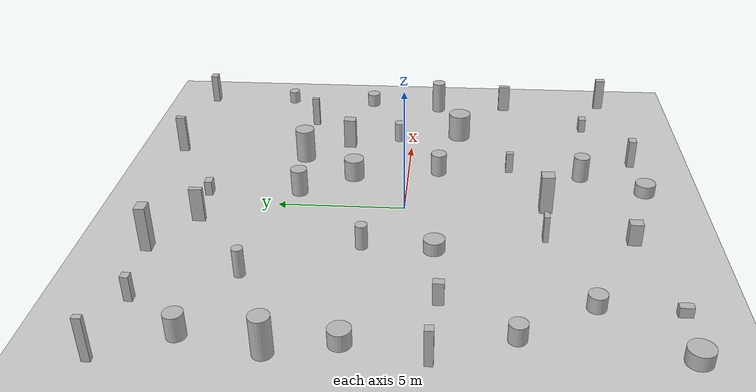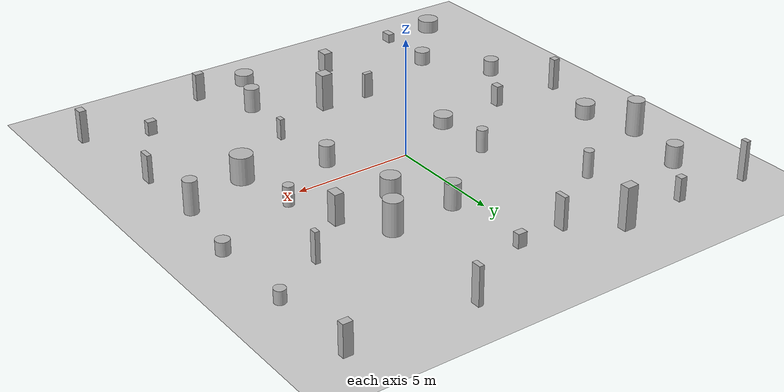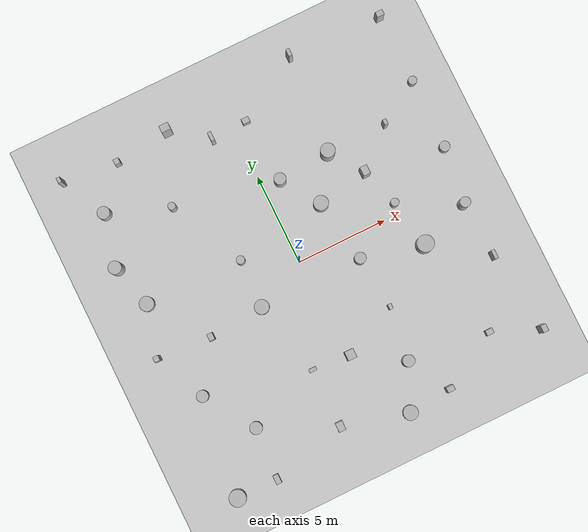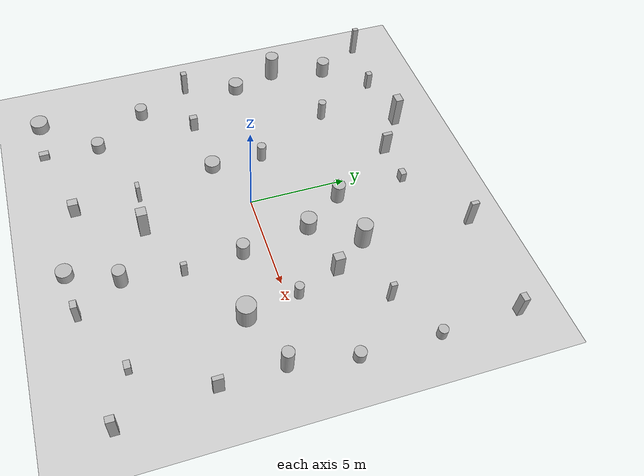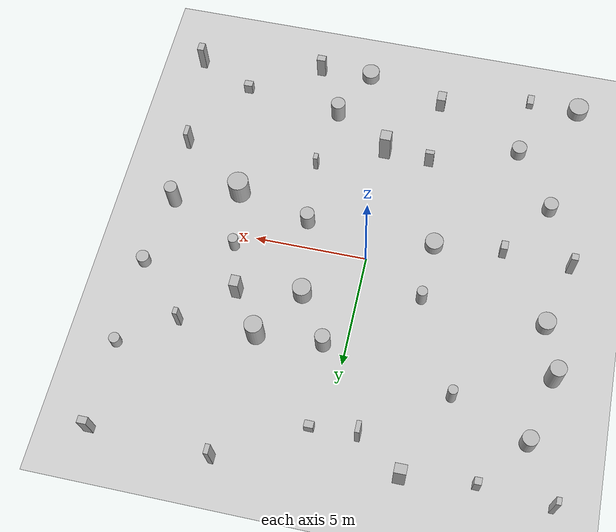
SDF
<?xml version='1.0'?>
<sdf version='1.7'>
<world name='default'>
    <light name='sun' type='directional'>
        <cast_shadows>1</cast_shadows>
        <pose>0 0 10 0 -0 0</pose>
        <diffuse>0.8 0.8 0.8 1</diffuse>
        <specular>0.2 0.2 0.2 1</specular>
        <attenuation>
            <range>1000</range>
            <constant>0.9</constant>
            <linear>0.01</linear>
            <quadratic>0.001</quadratic>
        </attenuation>
        <direction>-0.5 0.1 -0.9</direction>
        <spot>
            <inner_angle>0</inner_angle>
            <outer_angle>0</outer_angle>
            <falloff>0</falloff>
        </spot>
    </light>

    <model name='ground_plane'>
        <static>1</static>
        <link name='link'>
            <collision name='collision'>
                <geometry>
                    <plane>
                        <normal>0 0 1</normal>
                        <size>100 100</size>
                    </plane>
                </geometry>
                <surface>
                    <contact>
                        <collide_bitmask>65535</collide_bitmask>
                        <ode/>
                    </contact>
                    <friction>
                        <ode>
                            <mu>100</mu>
                            <mu2>50</mu2>
                        </ode>
                        <torsional>
                            <ode/>
                        </torsional>
                    </friction>
                    <bounce/>
                </surface>
                <max_contacts>10</max_contacts>
            </collision>
            <visual name='visual'>
                <cast_shadows>0</cast_shadows>
                <geometry>
                    <plane>
                        <normal>0 0 1</normal>
                        <size>100 100</size>
                    </plane>
                </geometry>
                <material>
                    <script>
                        <uri>file://media/materials/scripts/gazebo.material</uri>
                        <name>Gazebo/Grey</name>
                    </script>
                </material>
            </visual>
            <self_collide>0</self_collide>
            <enable_wind>0</enable_wind>
            <kinematic>0</kinematic>
        </link>
    </model>

    <gravity>0 0 -9.8</gravity>
    <magnetic_field>6e-06 2.3e-05 -4.2e-05</magnetic_field>
    <atmosphere type='adiabatic'/>

    <physics type='ode'>
        <max_step_size>0.001</max_step_size>
        <real_time_factor>1</real_time_factor>
        <real_time_update_rate>1000</real_time_update_rate>
        <ode>
            <solver>
                <type>quick</type>
                <iters>50</iters>
                <sor>1.4</sor>
            </solver>
            <constraints>
                <cfm>0.00001</cfm>
                <erp>0.2</erp>
                <contact_max_correcting_vel>100</contact_max_correcting_vel>
                <contact_surface_layer>0.001</contact_surface_layer>
            </constraints>
        </ode>
    </physics>

    <scene>
        <ambient>0.4 0.4 0.4 1</ambient>
        <background>0.7 0.7 0.7 1</background>
        <shadows>1</shadows>
    </scene>

    <wind/>
    <spherical_coordinates>
        <surface_model>EARTH_WGS84</surface_model>
        <latitude_deg>0</latitude_deg>
        <longitude_deg>0</longitude_deg>
        <elevation>0</elevation>
        <heading_deg>0</heading_deg>
    </spherical_coordinates>

    <!-- 所有障碍物模型都添加了碰撞检测 -->

    <model name='cylinder_0_0.7_0.7_2.1'>
        <static>true</static>
        <pose>0.9762700785464951 4.30378732744839 0.5448831829968968 0 0 0</pose>
        <link name='link'>
            <collision name='collision'>
                <geometry>
                    <cylinder>
                        <radius>0.3270964398016714</radius>
                        <length>1.0897663659937935</length>
                    </cylinder>
                </geometry>
                <surface>
                    <contact>
                        <ode>
                            <min_depth>0.001</min_depth>
                            <max_vel>0.0</max_vel>
                        </ode>
                    </contact>
                </surface>
            </collision>
            <visual name='visual'>
                <geometry>
                    <cylinder>
                        <radius>0.3270964398016714</radius>
                        <length>1.0897663659937935</length>
                    </cylinder>
                </geometry>
            </visual>
        </link>
    </model>

    <model name='cylinder_1_0.6_0.6_2.9'>
        <static>true</static>
        <pose>2.917882261333123 -1.2482557747461502 0.4636627605010293 0 0 0</pose>
        <link name='link'>
            <collision name='collision'>
                <geometry>
                    <cylinder>
                        <radius>0.3150324556477333</radius>
                        <length>0.9273255210020586</length>
                    </cylinder>
                </geometry>
                <surface>
                    <contact>
                        <ode>
                            <min_depth>0.001</min_depth>
                            <max_vel>0.0</max_vel>
                        </ode>
                    </contact>
                </surface>
            </collision>
            <visual name='visual'>
                <geometry>
                    <cylinder>
                        <radius>0.3150324556477333</radius>
                        <length>0.9273255210020586</length>
                    </cylinder>
                </geometry>
            </visual>
        </link>
    </model>

    <model name='cylinder_2_0.4_0.4_2.9'>
        <static>true</static>
        <pose>5.834500761653292 0.5778983950580887 0.425596638292661 0 0 0</pose>
        <link name='link'>
            <collision name='collision'>
                <geometry>
                    <cylinder>
                        <radius>0.2213108174593661</radius>
                        <length>0.851193276585322</length>
                    </cylinder>
                </geometry>
                <surface>
                    <contact>
                        <ode>
                            <min_depth>0.001</min_depth>
                            <max_vel>0.0</max_vel>
                        </ode>
                    </contact>
                </surface>
            </collision>
            <visual name='visual'>
                <geometry>
                    <cylinder>
                        <radius>0.2213108174593661</radius>
                        <length>0.851193276585322</length>
                    </cylinder>
                </geometry>
            </visual>
        </link>
    </model>

    <model name='cylinder_3_0.9_0.9_2.6'>
        <static>true</static>
        <pose>-8.257414005969185 -9.595632051193485 0.2781567509498504 0 0 0</pose>
        <link name='link'>
            <collision name='collision'>
                <geometry>
                    <cylinder>
                        <radius>0.46100364447404574</radius>
                        <length>0.5563135018997007</length>
                    </cylinder>
                </geometry>
                <surface>
                    <contact>
                        <ode>
                            <min_depth>0.001</min_depth>
                            <max_vel>0.0</max_vel>
                        </ode>
                    </contact>
                </surface>
            </collision>
            <visual name='visual'>
                <geometry>
                    <cylinder>
                        <radius>0.46100364447404574</radius>
                        <length>0.5563135018997007</length>
                    </cylinder>
                </geometry>
            </visual>
        </link>
    </model>

    <model name='cylinder_4_0.5_0.5_2.6'>
        <static>true</static>
        <pose>9.572366844655281 5.983171284334471 0.2805291762864555 0 0 0</pose>
        <link name='link'>
            <collision name='collision'>
                <geometry>
                    <cylinder>
                        <radius>0.23548232776067998</radius>
                        <length>0.561058352572911</length>
                    </cylinder>
                </geometry>
                <surface>
                    <contact>
                        <ode>
                            <min_depth>0.001</min_depth>
                            <max_vel>0.0</max_vel>
                        </ode>
                    </contact>
                </surface>
            </collision>
            <visual name='visual'>
                <geometry>
                    <cylinder>
                        <radius>0.23548232776067998</radius>
                        <length>0.561058352572911</length>
                    </cylinder>
                </geometry>
            </visual>
        </link>
    </model>

    <model name='cylinder_5_0.6_0.6_2.0'>
        <static>true</static>
        <pose>2.798420426550477 -7.132934251819072 0.5218483217500718 0 0 0</pose>
        <link name='link'>
            <collision name='collision'>
                <geometry>
                    <cylinder>
                        <radius>0.3243985819971571</radius>
                        <length>1.0436966435001436</length>
                    </cylinder>
                </geometry>
                <surface>
                    <contact>
                        <ode>
                            <min_depth>0.001</min_depth>
                            <max_vel>0.0</max_vel>
                        </ode>
                    </contact>
                </surface>
            </collision>
            <visual name='visual'>
                <geometry>
                    <cylinder>
                        <radius>0.3243985819971571</radius>
                        <length>1.0436966435001436</length>
                    </cylinder>
                </geometry>
            </visual>
        </link>
    </model>

    <model name='cylinder_6_0.4_0.4_2.1'>
        <static>true</static>
        <pose>-4.70888775790746 5.484673788684333 0.5684339488686485 0 0 0</pose>
        <link name='link'>
            <collision name='collision'>
                <geometry>
                    <cylinder>
                        <radius>0.20563694013090655</radius>
                        <length>1.136867897737297</length>
                    </cylinder>
                </geometry>
                <surface>
                    <contact>
                        <ode>
                            <min_depth>0.001</min_depth>
                            <max_vel>0.0</max_vel>
                        </ode>
                    </contact>
                </surface>
            </collision>
            <visual name='visual'>
                <geometry>
                    <cylinder>
                        <radius>0.20563694013090655</radius>
                        <length>1.136867897737297</length>
                    </cylinder>
                </geometry>
            </visual>
        </link>
    </model>

    <model name='cylinder_7_0.8_0.8_2.9'>
        <static>true</static>
        <pose>2.352709941517542 2.2419144544484286 0.4437480785146242 0 0 0</pose>
        <link name='link'>
            <collision name='collision'>
                <geometry>
                    <cylinder>
                        <radius>0.404546089731045</radius>
                        <length>0.8874961570292483</length>
                    </cylinder>
                </geometry>
                <surface>
                    <contact>
                        <ode>
                            <min_depth>0.001</min_depth>
                            <max_vel>0.0</max_vel>
                        </ode>
                    </contact>
                </surface>
            </collision>
            <visual name='visual'>
                <geometry>
                    <cylinder>
                        <radius>0.404546089731045</radius>
                        <length>0.8874961570292483</length>
                    </cylinder>
                </geometry>
            </visual>
        </link>
    </model>

    <model name='cylinder_8_0.8_0.8_1.1'>
        <static>true</static>
        <pose>-2.80984198852428 -1.259360924013171 0.2602254716292698 0 0 0</pose>
        <link name='link'>
            <collision name='collision'>
                <geometry>
                    <cylinder>
                        <radius>0.4000300146337003</radius>
                        <length>0.5204509432585397</length>
                    </cylinder>
                </geometry>
                <surface>
                    <contact>
                        <ode>
                            <min_depth>0.001</min_depth>
                            <max_vel>0.0</max_vel>
                        </ode>
                    </contact>
                </surface>
            </collision>
            <visual name='visual'>
                <geometry>
                    <cylinder>
                        <radius>0.4000300146337003</radius>
                        <length>0.5204509432585397</length>
                    </cylinder>
                </geometry>
            </visual>
        </link>
    </model>

    <model name='cylinder_9_0.5_0.5_3.0'>
        <static>true</static>
        <pose>-2.725784581147548 1.4039354083575937 0.4883738380592262 0 0 0</pose>
        <link name='link'>
            <collision name='collision'>
                <geometry>
                    <cylinder>
                        <radius>0.23061344322440844</radius>
                        <length>0.9767476761184524</length>
                    </cylinder>
                </geometry>
                <surface>
                    <contact>
                        <ode>
                            <min_depth>0.001</min_depth>
                            <max_vel>0.0</max_vel>
                        </ode>
                    </contact>
                </surface>
            </collision>
            <visual name='visual'>
                <geometry>
                    <cylinder>
                        <radius>0.23061344322440844</radius>
                        <length>0.9767476761184524</length>
                    </cylinder>
                </geometry>
            </visual>
        </link>
    </model>

    <model name='cylinder_10_0.7_0.7_1.5'>
        <static>true</static>
        <pose>-5.822464878103306 -6.773809642300074 0.3032916025397821 0 0 0</pose>
        <link name='link'>
            <collision name='collision'>
                <geometry>
                    <cylinder>
                        <radius>0.3398932318568919</radius>
                        <length>0.6065832050795642</length>
                    </cylinder>
                </geometry>
                <surface>
                    <contact>
                        <ode>
                            <min_depth>0.001</min_depth>
                            <max_vel>0.0</max_vel>
                        </ode>
                    </contact>
                </surface>
            </collision>
            <visual name='visual'>
                <geometry>
                    <cylinder>
                        <radius>0.3398932318568919</radius>
                        <length>0.6065832050795642</length>
                    </cylinder>
                </geometry>
            </visual>
        </link>
    </model>

    <model name='cylinder_11_0.7_0.7_3.0'>
        <static>true</static>
        <pose>-8.057974484138775 6.758898149976076 0.4764594650133958 0 0 0</pose>
        <link name='link'>
            <collision name='collision'>
                <geometry>
                    <cylinder>
                        <radius>0.3405953604943105</radius>
                        <length>0.9529189300267915</length>
                    </cylinder>
                </geometry>
                <surface>
                    <contact>
                        <ode>
                            <min_depth>0.001</min_depth>
                            <max_vel>0.0</max_vel>
                        </ode>
                    </contact>
                </surface>
            </collision>
            <visual name='visual'>
                <geometry>
                    <cylinder>
                        <radius>0.3405953604943105</radius>
                        <length>0.9529189300267915</length>
                    </cylinder>
                </geometry>
            </visual>
        </link>
    </model>

    <model name='cylinder_12_0.6_0.6_1.1'>
        <static>true</static>
        <pose>9.535221763806742 2.0969103949009202 0.2591877922543207 0 0 0</pose>
        <link name='link'>
            <collision name='collision'>
                <geometry>
                    <cylinder>
                        <radius>0.2848420887729229</radius>
                        <length>0.5783755845086413</length>
                    </cylinder>
                </geometry>
                <surface>
                    <contact>
                        <ode>
                            <min_depth>0.001</min_depth>
                            <max_vel>0.0</max_vel>
                        </ode>
                    </contact>
                </surface>
            </collision>
            <visual name='visual'>
                <geometry>
                    <cylinder>
                        <radius>0.2848420887729229</radius>
                        <length>0.5783755845086413</length>
                    </cylinder>
                </geometry>
            </visual>
        </link>
    </model>

    <model name='cylinder_13_0.6_0.6_1.6'>
        <static>true</static>
        <pose>-7.596068775736622 -4.077196049557101 0.34983179393976 0 0 0</pose>
        <link name='link'>
            <collision name='collision'>
                <geometry>
                    <cylinder>
                        <radius>0.324278898354401</radius>
                        <length>0.6966358787952</length>
                    </cylinder>
                </geometry>
                <surface>
                    <contact>
                        <ode>
                            <min_depth>0.001</min_depth>
                            <max_vel>0.0</max_vel>
                        </ode>
                    </contact>
                </surface>
            </collision>
            <visual name='visual'>
                <geometry>
                    <cylinder>
                        <radius>0.324278898354401</radius>
                        <length>0.6966358787952</length>
                    </cylinder>
                </geometry>
            </visual>
        </link>
    </model>

    <model name='cylinder_14_0.7_0.7_1.5'>
        <static>true</static>
        <pose>-8.717050073024312 3.849442387400398 0.753894909394454 0 0 0</pose>
        <link name='link'>
            <collision name='collision'>
                <geometry>
                    <cylinder>
                        <radius>0.3569744160400099</radius>
                        <length>1.507789818788908</length>
                    </cylinder>
                </geometry>
                <surface>
                    <contact>
                        <ode>
                            <min_depth>0.001</min_depth>
                            <max_vel>0.0</max_vel>
                        </ode>
                    </contact>
                </surface>
            </collision>
            <visual name='visual'>
                <geometry>
                    <cylinder>
                        <radius>0.3569744160400099</radius>
                        <length>1.507789818788908</length>
                    </cylinder>
                </geometry>
            </visual>
        </link>
    </model>

    <model name='cylinder_15_0.8_0.8_1.6'>
        <static>true</static>
        <pose>-8.121189784831166 1.5189299111235854 0.3185689524513237 0 0 0</pose>
        <link name='link'>
            <collision name='collision'>
                <geometry>
                    <cylinder>
                        <radius>0.4002231139891045</radius>
                        <length>0.6371379049026473</length>
                    </cylinder>
                </geometry>
                <surface>
                    <contact>
                        <ode>
                            <min_depth>0.001</min_depth>
                            <max_vel>0.0</max_vel>
                        </ode>
                    </contact>
                </surface>
            </collision>
            <visual name='visual'>
                <geometry>
                    <cylinder>
                        <radius>0.4002231139891045</radius>
                        <length>0.6371379049026473</length>
                    </cylinder>
                </geometry>
            </visual>
        </link>
    </model>

    <model name='cylinder_16_0.8_0.8_1.0'>
        <static>true</static>
        <pose>1.7302586962016626 -9.597849076250128 0.246954761925471 0 0 0</pose>
        <link name='link'>
            <collision name='collision'>
                <geometry>
                    <cylinder>
                        <radius>0.4033449610388691</radius>
                        <length>0.5093909523850941</length>
                    </cylinder>
                </geometry>
                <surface>
                    <contact>
                        <ode>
                            <min_depth>0.001</min_depth>
                            <max_vel>0.0</max_vel>
                        </ode>
                    </contact>
                </surface>
            </collision>
            <visual name='visual'>
                <geometry>
                    <cylinder>
                        <radius>0.4033449610388691</radius>
                        <length>0.5093909523850941</length>
                    </cylinder>
                </geometry>
            </visual>
        </link>
    </model>

    <model name='cylinder_17_0.6_0.6_2.4'>
        <static>true</static>
        <pose>9.054980230339702 -1.0574924276474533 0.6994792753175043 0 0 0</pose>
        <link name='link'>
            <collision name='collision'>
                <geometry>
                    <cylinder>
                        <radius>0.2892310852565401</radius>
                        <length>1.3989585506350086</length>
                    </cylinder>
                </geometry>
                <surface>
                    <contact>
                        <ode>
                            <min_depth>0.001</min_depth>
                            <max_vel>0.0</max_vel>
                        </ode>
                    </contact>
                </surface>
            </collision>
            <visual name='visual'>
                <geometry>
                    <cylinder>
                        <radius>0.2892310852565401</radius>
                        <length>1.3989585506350086</length>
                    </cylinder>
                </geometry>
            </visual>
        </link>
    </model>

    <model name='cylinder_18_0.9_0.9_2.2'>
        <static>true</static>
        <pose>6.275956394049544 -2.0698851830603076 0.5812728726358587 0 0 0</pose>
        <link name='link'>
            <collision name='collision'>
                <geometry>
                    <cylinder>
                        <radius>0.4645206085564558</radius>
                        <length>1.1625457452717174</length>
                    </cylinder>
                </geometry>
                <surface>
                    <contact>
                        <ode>
                            <min_depth>0.001</min_depth>
                            <max_vel>0.0</max_vel>
                        </ode>
                    </contact>
                </surface>
            </collision>
            <visual name='visual'>
                <geometry>
                    <cylinder>
                        <radius>0.4645206085564558</radius>
                        <length>1.1625457452717174</length>
                    </cylinder>
                </geometry>
            </visual>
        </link>
    </model>

    <model name='cylinder_19_0.8_0.8_2.9'>
        <static>true</static>
        <pose>3.850631801555318 4.50508559639281 0.7060836347232238 0 0 0</pose>
        <link name='link'>
            <collision name='collision'>
                <geometry>
                    <cylinder>
                        <radius>0.3931970597688912</radius>
                        <length>1.4121672694464475</length>
                    </cylinder>
                </geometry>
                <surface>
                    <contact>
                        <ode>
                            <min_depth>0.001</min_depth>
                            <max_vel>0.0</max_vel>
                        </ode>
                    </contact>
                </surface>
            </collision>
            <visual name='visual'>
                <geometry>
                    <cylinder>
                        <radius>0.3931970597688912</radius>
                        <length>1.4121672694464475</length>
                    </cylinder>
                </geometry>
            </visual>
        </link>
    </model>

    <model name='box_0_0.2_0.3_1.9'>
        <static>true</static>
        <pose>3.2034707498537003 -4.198447855791119 0.45 0 0 0</pose>
        <link name='link'>
            <collision name='collision'>
                <geometry>
                    <box>
                        <size>0.2 0.3 0.9</size>
                    </box>
                </geometry>
                <surface>
                    <contact>
                        <ode>
                            <min_depth>0.001</min_depth>
                            <max_vel>0.0</max_vel>
                        </ode>
                    </contact>
                </surface>
            </collision>
            <visual name='visual'>
                <geometry>
                    <box>
                        <size>0.2 0.3 0.9</size>
                    </box>
                </geometry>
            </visual>
        </link>
    </model>

    <model name='box_1_0.2_0.5_2.4'>
        <static>true</static>
        <pose>-1.2827014946874638 7.838467100313441 0.7 0 0 0</pose>
        <link name='link'>
            <collision name='collision'>
                <geometry>
                    <box>
                        <size>0.2 0.5 1.4</size>
                    </box>
                </geometry>
                <surface>
                    <contact>
                        <ode>
                            <min_depth>0.001</min_depth>
                            <max_vel>0.0</max_vel>
                        </ode>
                    </contact>
                </surface>
            </collision>
            <visual name='visual'>
                <geometry>
                    <box>
                        <size>0.2 0.5 1.4</size>
                    </box>
                </geometry>
            </visual>
        </link>
    </model>

    <model name='box_2_0.2_0.4_2.7'>
        <static>true</static>
        <pose>4.2848259909822275 9.976940131357331 0.8 0 0 0</pose>
        <link name='link'>
            <collision name='collision'>
                <geometry>
                    <box>
                        <size>0.2 0.4 1.6</size>
                    </box>
                </geometry>
                <surface>
                    <contact>
                        <ode>
                            <min_depth>0.001</min_depth>
                            <max_vel>0.0</max_vel>
                        </ode>
                    </contact>
                </surface>
            </collision>
            <visual name='visual'>
                <geometry>
                    <box>
                        <size>0.2 0.4 1.6</size>
                    </box>
                </geometry>
            </visual>
        </link>
    </model>

    <model name='box_3_0.4_0.5_1.9'>
        <static>true</static>
        <pose>-1.8563340554800067 -8.61666009089724 0.45 0 0 0</pose>
        <link name='link'>
            <collision name='collision'>
                <geometry>
                    <box>
                        <size>0.4 0.5 0.9</size>
                    </box>
                </geometry>
                <surface>
                    <contact>
                        <ode>
                            <min_depth>0.001</min_depth>
                            <max_vel>0.0</max_vel>
                        </ode>
                    </contact>
                </surface>
            </collision>
            <visual name='visual'>
                <geometry>
                    <box>
                        <size>0.4 0.5 0.9</size>
                    </box>
                </geometry>
            </visual>
        </link>
    </model>

    <model name='box_4_0.3_0.5_1.4'>
        <static>true</static>
        <pose>-6.000069502071998 -9.62956411078772 0.2 0 0 0</pose>
        <link name='link'>
            <collision name='collision'>
                <geometry>
                    <box>
                        <size>0.3 0.5 0.4</size>
                    </box>
                </geometry>
                <surface>
                    <contact>
                        <ode>
                            <min_depth>0.001</min_depth>
                            <max_vel>0.0</max_vel>
                        </ode>
                    </contact>
                </surface>
            </collision>
            <visual name='visual'>
                <geometry>
                    <box>
                        <size>0.3 0.5 0.4</size>
                    </box>
                </geometry>
            </visual>
        </link>
    </model>

    <model name='box_5_0.4_0.3_2.2'>
        <static>true</static>
        <pose>4.088288038470655 -9.363221409373843 0.6 0 0 0</pose>
        <link name='link'>
            <collision name='collision'>
                <geometry>
                    <box>
                        <size>0.4 0.3 1.2</size>
                    </box>
                </geometry>
                <surface>
                    <contact>
                        <ode>
                            <min_depth>0.001</min_depth>
                            <max_vel>0.0</max_vel>
                        </ode>
                    </contact>
                </surface>
            </collision>
            <visual name='visual'>
                <geometry>
                    <box>
                        <size>0.4 0.3 1.2</size>
                    </box>
                </geometry>
            </visual>
        </link>
    </model>

    <model name='box_6_0.3_0.3_2.0'>
        <static>true</static>
        <pose>-6.276139882393277 8.887447799678672 0.5 0 0 0</pose>
        <link name='link'>
            <collision name='collision'>
                <geometry>
                    <box>
                        <size>0.3 0.3 1.0</size>
                    </box>
                </geometry>
                <surface>
                    <contact>
                        <ode>
                            <min_depth>0.001</min_depth>
                            <max_vel>0.0</max_vel>
                        </ode>
                    </contact>
                </surface>
            </collision>
            <visual name='visual'>
                <geometry>
                    <box>
                        <size>0.3 0.3 1.0</size>
                    </box>
                </geometry>
            </visual>
        </link>
    </model>

    <model name='box_7_0.3_0.3_2.4'>
        <static>true</static>
        <pose>-8.839416793522489 -1.3116674888375854 0.7 0 0 0</pose>
        <link name='link'>
            <collision name='collision'>
                <geometry>
                    <box>
                        <size>0.3 0.3 1.4</size>
                    </box>
                </geometry>
                <surface>
                    <contact>
                        <ode>
                            <min_depth>0.001</min_depth>
                            <max_vel>0.0</max_vel>
                        </ode>
                    </contact>
                </surface>
            </collision>
            <visual name='visual'>
                <geometry>
                    <box>
                        <size>0.3 0.3 1.4</size>
                    </box>
                </geometry>
            </visual>
        </link>
    </model>

    <model name='box_8_0.4_0.3_1.4'>
        <static>true</static>
        <pose>0.731584222174444 7.933425860806842 0.3 0 0 0</pose>
        <link name='link'>
            <collision name='collision'>
                <geometry>
                    <box>
                        <size>0.4 0.3 0.6</size>
                    </box>
                </geometry>
                <surface>
                    <contact>
                        <ode>
                            <min_depth>0.001</min_depth>
                            <max_vel>0.0</max_vel>
                        </ode>
                    </contact>
                </surface>
            </collision>
            <visual name='visual'>
                <geometry>
                    <box>
                        <size>0.4 0.3 0.6</size>
                    </box>
                </geometry>
            </visual>
        </link>
    </model>

    <model name='box_9_0.3_0.4_1.9'>
        <static>true</static>
        <pose>-5.850598491177812 -1.5062906249698749 0.45 0 0 0</pose>
        <link name='link'>
            <collision name='collision'>
                <geometry>
                    <box>
                        <size>0.3 0.4 0.9</size>
                    </box>
                </geometry>
                <surface>
                    <contact>
                        <ode>
                            <min_depth>0.001</min_depth>
                            <max_vel>0.0</max_vel>
                        </ode>
                    </contact>
                </surface>
            </collision>
            <visual name='visual'>
                <geometry>
                    <box>
                        <size>0.3 0.4 0.9</size>
                    </box>
                </geometry>
            </visual>
        </link>
    </model>

    <model name='box_10_0.4_0.3_1.3'>
        <static>true</static>
        <pose>7.277112118464629 -7.649362880759338 0.3 0 0 0</pose>
        <link name='link'>
            <collision name='collision'>
                <geometry>
                    <box>
                        <size>0.4 0.3 0.6</size>
                    </box>
                </geometry>
                <surface>
                    <contact>
                        <ode>
                            <min_depth>0.001</min_depth>
                            <max_vel>0.0</max_vel>
                        </ode>
                    </contact>
                </surface>
            </collision>
            <visual name='visual'>
                <geometry>
                    <box>
                        <size>0.4 0.3 0.6</size>
                    </box>
                </geometry>
            </visual>
        </link>
    </model>

    <model name='box_11_0.2_0.5_1.2'>
        <static>true</static>
        <pose>9.23872757094458 -4.157049464149023 0.6002939422654978 0 0 0</pose>
        <link name='link'>
            <collision name='collision'>
                <geometry>
                    <box>
                        <size>0.2 0.5 1.2</size>
                    </box>
                </geometry>
                <surface>
                    <contact>
                        <ode>
                            <min_depth>0.001</min_depth>
                            <max_vel>0.0</max_vel>
                        </ode>
                    </contact>
                </surface>
            </collision>
            <visual name='visual'>
                <geometry>
                    <box>
                        <size>0.2 0.5 1.2</size>
                    </box>
                </geometry>
            </visual>
        </link>
    </model>

    <model name='box_12_0.5_0.4_2.9'>
        <static>true</static>
        <pose>-3.236820963263087 9.231403090829971 0.9 0 0 0</pose>
        <link name='link'>
            <collision name='collision'>
                <geometry>
                    <box>
                        <size>0.5 0.4 1.8</size>
                    </box>
                </geometry>
                <surface>
                    <contact>
                        <ode>
                            <min_depth>0.001</min_depth>
                            <max_vel>0.0</max_vel>
                        </ode>
                    </contact>
                </surface>
            </collision>
            <visual name='visual'>
                <geometry>
                    <box>
                        <size>0.5 0.4 1.8</size>
                    </box>
                </geometry>
            </visual>
        </link>
    </model>

    <model name='box_13_0.5_0.5_2.7'>
        <static>true</static>
        <pose>0.22637965092912005 -5.513659420505215 0.8 0 0 0</pose>
        <link name='link'>
            <collision name='collision'>
                <geometry>
                    <box>
                        <size>0.5 0.5 1.6</size>
                    </box>
                </geometry>
                <surface>
                    <contact>
                        <ode>
                            <min_depth>0.001</min_depth>
                            <max_vel>0.0</max_vel>
                        </ode>
                    </contact>
                </surface>
            </collision>
            <visual name='visual'>
                <geometry>
                    <box>
                        <size>0.5 0.5 1.6</size>
                    </box>
                </geometry>
            </visual>
        </link>
    </model>

    <model name='box_14_0.4_0.2_1.1'>
        <static>true</static>
        <pose>-1.8551765717238524 -5.355317156581146 0.5534271817868253 0 0 0</pose>
        <link name='link'>
            <collision name='collision'>
                <geometry>
                    <box>
                        <size>0.4 0.2 1.1</size>
                    </box>
                </geometry>
                <surface>
                    <contact>
                        <ode>
                            <min_depth>0.001</min_depth>
                            <max_vel>0.0</max_vel>
                        </ode>
                    </contact>
                </surface>
            </collision>
            <visual name='visual'>
                <geometry>
                    <box>
                        <size>0.4 0.2 1.1</size>
                    </box>
                </geometry>
            </visual>
        </link>
    </model>

    <model name='box_15_0.2_0.3_1.3'>
        <static>true</static>
        <pose>7.211023476575875 4.540885254226566 0.6314827992911276 0 0 0</pose>
        <link name='link'>
            <collision name='collision'>
                <geometry>
                    <box>
                        <size>0.2 0.3 1.3</size>
                    </box>
                </geometry>
                <surface>
                    <contact>
                        <ode>
                            <min_depth>0.001</min_depth>
                            <max_vel>0.0</max_vel>
                        </ode>
                    </contact>
                </surface>
            </collision>
            <visual name='visual'>
                <geometry>
                    <box>
                        <size>0.2 0.3 1.3</size>
                    </box>
                </geometry>
            </visual>
        </link>
    </model>

    <model name='box_16_0.4_0.5_1.3'>
        <static>true</static>
        <pose>5.135572854737784 2.721221108942826 0.6605388224852564 0 0 0</pose>
        <link name='link'>
            <collision name='collision'>
                <geometry>
                    <box>
                        <size>0.4 0.5 1.3</size>
                    </box>
                </geometry>
                <surface>
                    <contact>
                        <ode>
                            <min_depth>0.001</min_depth>
                            <max_vel>0.0</max_vel>
                        </ode>
                    </contact>
                </surface>
            </collision>
            <visual name='visual'>
                <geometry>
                    <box>
                        <size>0.4 0.5 1.3</size>
                    </box>
                </geometry>
            </visual>
        </link>
    </model>

    <model name='box_17_0.2_0.3_1.7'>
        <static>true</static>
        <pose>-9.333907469066077 9.17965443726947 0.8567068904025429 0 0 0</pose>
        <link name='link'>
            <collision name='collision'>
                <geometry>
                    <box>
                        <size>0.2 0.3 1.7</size>
                    </box>
                </geometry>
                <surface>
                    <contact>
                        <ode>
                            <min_depth>0.001</min_depth>
                            <max_vel>0.0</max_vel>
                        </ode>
                    </contact>
                </surface>
            </collision>
            <visual name='visual'>
                <geometry>
                    <box>
                        <size>0.2 0.3 1.7</size>
                    </box>
                </geometry>
            </visual>
        </link>
    </model>

    <model name='box_18_0.4_0.3_1.3'>
        <static>true</static>
        <pose>9.485124256361004 9.806900031217879 0.6629544260466054 0 0 0</pose>
        <link name='link'>
            <collision name='collision'>
                <geometry>
                    <box>
                        <size>0.4 0.3 1.3</size>
                    </box>
                </geometry>
                <surface>
                    <contact>
                        <ode>
                            <min_depth>0.001</min_depth>
                            <max_vel>0.0</max_vel>
                        </ode>
                    </contact>
                </surface>
            </collision>
            <visual name='visual'>
                <geometry>
                    <box>
                        <size>0.4 0.3 1.3</size>
                    </box>
                </geometry>
            </visual>
        </link>
    </model>

    <model name='box_19_0.3_0.4_1.6'>
        <static>true</static>
        <pose>9.78819554568863 -8.693915856964395 0.7 0 0 0</pose>
        <link name='link'>
            <collision name='collision'>
                <geometry>
                    <box>
                        <size>0.3 0.4 1.4</size>
                    </box>
                </geometry>
                <surface>
                    <contact>
                        <ode>
                            <min_depth>0.001</min_depth>
                            <max_vel>0.0</max_vel>
                        </ode>
                    </contact>
                </surface>
            </collision>
            <visual name='visual'>
                <geometry>
                    <box>
                        <size>0.3 0.4 1.4</size>
                    </box>
                </geometry>
            </visual>
        </link>
    </model>
</world>
</sdf>
